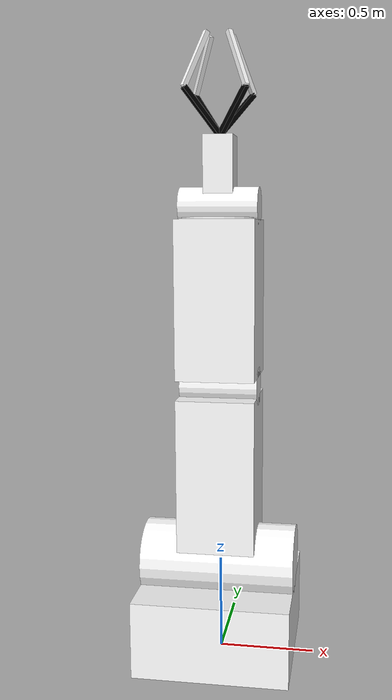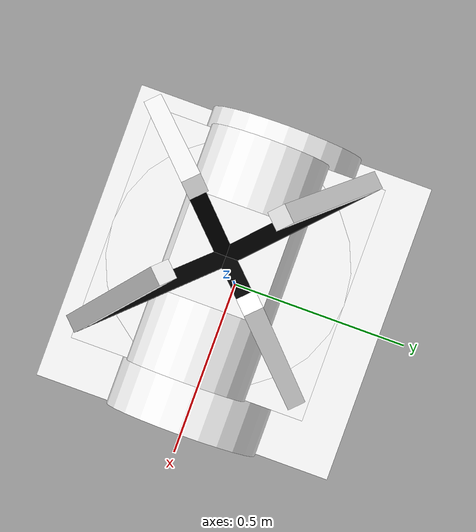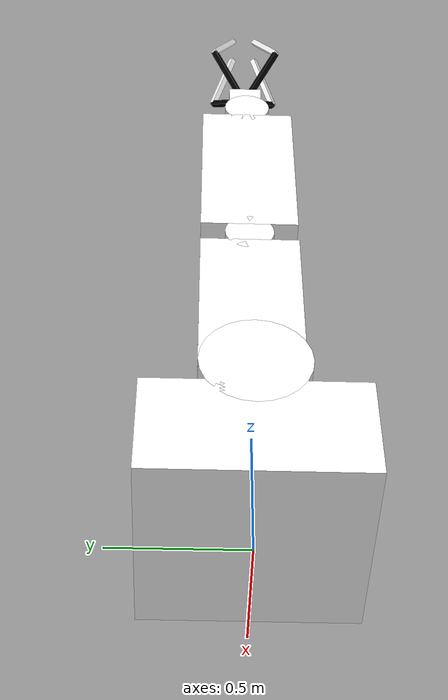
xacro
<?xml version="1.0"?>
<robot xmlns:xacro="http://www.ros.org/wiki/xacro"  >

    <xacro:include filename="joint_macro.xacro" />
    <xacro:include filename="gripper_fingers.xacro" />

    <material name="black">
        <color rgba="0 0 0 1"/>
    </material>
    <material name="white">
        <color rgba="1 1 1 1"/>
    </material>
    <link name="base_link">
    </link>
       <!-- CHASSIS -->
    <joint name="chassis_joint" type="revolute">
        <limit effort="5" velocity="2.1750" lower="-3.14" upper="3.14"/>
        <parent link="base_link"/>
        <child link="chassis_link" />
        <origin xyz="0 0 0"/>
        <axis xyz="0 0 1" />
    </joint>
    <link name="chassis_link">
        <visual>
            <origin xyz="0 0 0.2"/>
            <geometry>
                <box size="0.8 0.8 0.4" />
            </geometry>
            <material name="white"/>
        </visual>
    </link>

    <!-- BASE LOWER ARM -->
    <xacro:base_arm_generator suffix="lower" parent="chassis" ph="0.4" radius="0.2" length="0.8" />
    <!-- BASE UPPER ARM -->
    <xacro:base_arm_generator suffix="upper" parent="lower_arm" ph="0.8" radius="0.1" length="0.4" />
    <!-- BASE LAST ARM -->
    <xacro:base_arm_generator suffix="last" parent="yaw_arm" ph="0.01" radius="0.1" length="0.4" />

    <!-- LOWER ARM -->
    <xacro:arm_generator suffix="lower" parent="base_lower_arm" ph="0.2" sizex="0.4"  sizey="0.4" sizez="0.8" upper="1" lower="0" />
    <!-- UPPER ARM -->
    <xacro:arm_generator suffix="upper" parent="base_upper_arm" ph="0.1" sizex="0.4"  sizey="0.4" sizez="0.8" upper="1" lower="0" />
    <!-- LAST ARM -->
    <xacro:arm_generator suffix="last"  parent="base_last_arm"  ph="0.1" sizex="0.15" sizey="0.15" sizez="0.3" upper="1" lower="-1" />
    <!-- YAW ARM  -->
    <joint name="yaw_arm_joint" type="revolute" >
        <limit effort="5" velocity="2.1750" lower="-3.14" upper="3.14"/>
        <parent link="upper_arm_link" />
        <child link="yaw_arm_link" />
        <origin xyz="0 0 0.8" />
        <axis xyz="0 0 1" />
    </joint>
    <link name="yaw_arm_link">
        <visual>
            <origin xyz="0 0 0.005"/>
            <geometry>
                <cylinder radius="0.2" length="0.01"/>
            </geometry>
            <material name="white"/>
        </visual>
    </link>
    <!-- GRIPPER -->
    <!-- FINGERS MACRO -->
    <xacro:finger id="first" yaw="${pi/4}"/>
    <xacro:finger id="second" yaw="${3*pi/4}"/>
    <xacro:finger id="third" yaw="${5*pi/4}"/>
    <xacro:finger id="fourth" yaw="${7*pi/4}"/>

</robot>

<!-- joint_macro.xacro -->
<robot xmlns:xacro="http://www.ros.org/wiki/xacro"  >
    <xacro:include filename="inertial_macros.xacro" />

    <xacro:macro name="arm_generator" params="suffix parent ph sizex sizey sizez upper lower">
        <!-- arm macro -->
    <joint name="${suffix}_arm_joint" type="revolute" >
        <limit effort="5" velocity="2.1750" lower="${lower}" upper="${upper}"/>
        <parent link="${parent}_link" />
        <child link="${suffix}_arm_link" />
        <origin xyz="0 0 ${ph}" />
    </joint>
    <link name="${suffix}_arm_link">
        <visual>
            <origin xyz="0 0 ${sizez/2}"/>
            <geometry>
                <box size="${sizex} ${sizey} ${sizez}"/>
            </geometry>
            <material name="white"/>
        </visual>
        <collision>
            <origin xyz="0 0 ${sizez/2}"/>
            <geometry>
                <box size="${sizex} ${sizey} ${sizez}"/>
            </geometry>
        </collision>
        <xacro:inertial_box mass="0.3" x="${sizex}" y="${sizey}" z="${sizez}" >
            <origin xyz="0 0 ${sizez/2}" rpy="0 0 0" />
        </xacro:inertial_box>
    </link>
    </xacro:macro>
    <xacro:macro name="base_arm_generator" params="suffix parent ph radius length">
        <!-- arm macro -->
        <joint name="base_${suffix}_arm_joint" type="fixed" >
            <parent link="${parent}_link" />
            <child link="base_${suffix}_arm_link" />
            <origin xyz="0 0 ${ph}" />
        </joint>

        <link name="base_${suffix}_arm_link" >
            <visual>
                <origin xyz="0 0 ${radius/2}" rpy="${pi/2} 0 ${pi/2}"/>
                <geometry>
                    <cylinder radius="${radius}" length="${length}" />
                </geometry>
                <material name="white"/>
            </visual>
            <collision>
                <origin xyz="0 0 ${radius/2}" rpy="${pi/2} 0 ${pi/2}"/>
                <geometry>
                    <cylinder radius="${radius}" length="${length}" />
                </geometry>

            </collision>
            <xacro:inertial_cylinder mass="0.3" radius="${radius}" length="${length}" >
                <origin xyz="0 0 ${radius/2}" rpy="${pi/2} 0 ${pi/2}" />
            </xacro:inertial_cylinder>

        </link>
    </xacro:macro>

</robot>

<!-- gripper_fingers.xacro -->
<robot xmlns:xacro="http://www.ros.org/wiki/xacro"  >
    <xacro:include filename="inertial_macros.xacro" />

    <xacro:macro name="finger" params="id yaw">
                            <!-- FINGER-->
    <!-- BOTTOM-->
    <joint name="${id}_finger_bottom_joint" type="revolute" >
        <limit effort="5" velocity="2.1750" lower="-0.1" upper="0.5"/>
        <parent link="last_arm_link" />
        <child link="${id}_finger_bottom_link" />
        <origin xyz="0 0 0.3" rpy="0 ${pi/4} ${yaw}"/>
        <axis xyz="0 1 0" />
    </joint>
    <link name="${id}_finger_bottom_link">
        <visual>
            <origin xyz="0 0 0.15" />
            <geometry>
                <box size="0.025 0.025 0.3"/>
            </geometry>
            <material name="black"/>
        </visual>
        <collision>
            <origin xyz="0 0 0.15" rpy="0 0 0 "/>
            <geometry>
                <box size="0.025 0.025 0.3"/>
            </geometry>
        </collision>
        <xacro:inertial_box mass="0.05" x="0.025" y="0.025" z="0.3" >
            <origin xyz="0 0 0.15" rpy="0 0 0" />
        </xacro:inertial_box>
    </link>
    <!-- TOP-->
    <joint name="${id}_finger_top_joint" type="fixed" >
        <parent link="${id}_finger_bottom_link" />
        <child link="${id}_finger_top_link" />
        <origin xyz="0 0 0.3" rpy="0 -${pi/2.5} 0"/>
    </joint>
    <link name="${id}_finger_top_link">
        <visual>
            <origin xyz="0 0 0.15" rpy="0 0 0 "/>
            <geometry>
                <box size="0.025 0.025 0.3"/>
            </geometry>
            <material name="white"/>
        </visual>
        <collision>
            <origin xyz="0 0 0.15" rpy="0 0 0 "/>
            <geometry>
                <box size="0.025 0.025 0.3"/>
            </geometry>
        </collision>
        <xacro:inertial_box mass="0.05" x="0.025" y="0.025" z="0.3" >
            <origin xyz="0 0 0.15" rpy="0 0 0" />
        </xacro:inertial_box>
    </link>

    </xacro:macro>

</robot>
